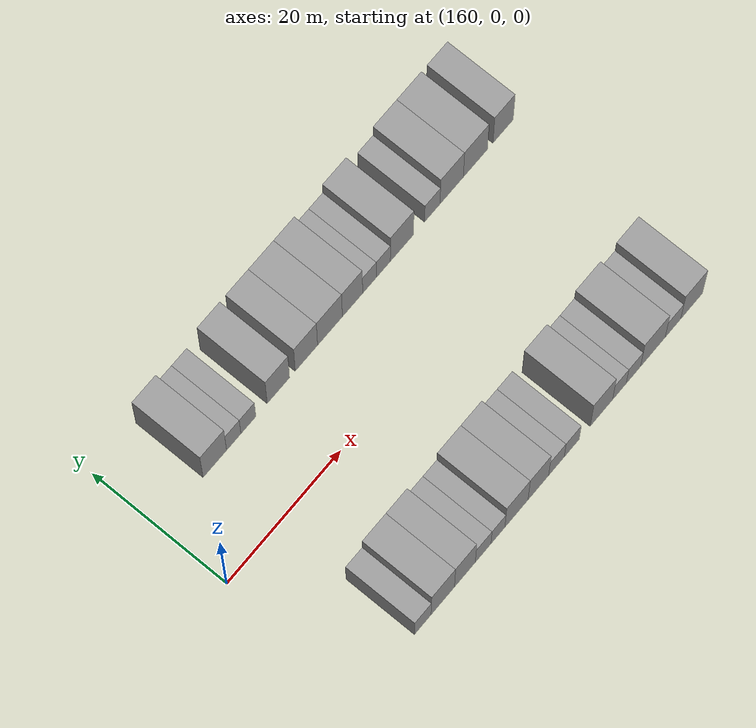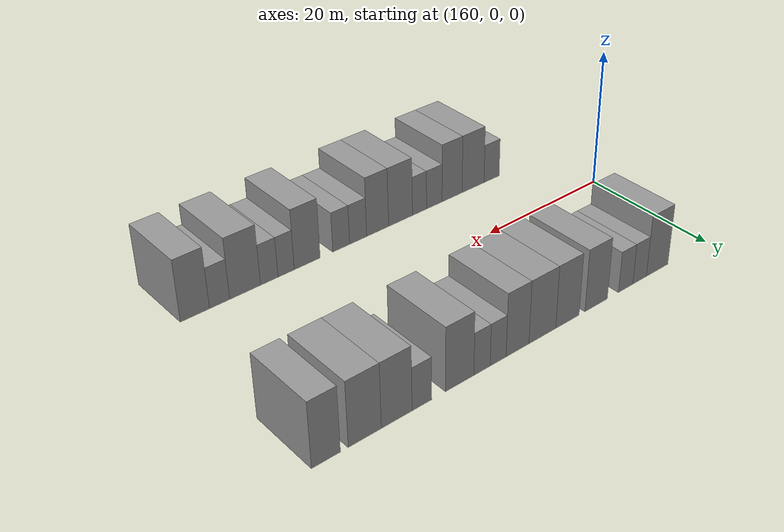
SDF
<sdf version="1.6">
 <world name="default">
  <model name="building_44">
   <static>1</static>
   <pose>169.7165 15.0000 0 0.000000 0.000000 1.570796</pose>
   <link name="link">
    <pose>0 0 4.50 0 0 0</pose>
    <collision name="collision"><geometry><box><size>10.0000 4.1293 9.0000</size></box></geometry></collision>
    <visual name="visual">
     <cast_shadows>0</cast_shadows>
     <geometry><box><size>10.0000 4.1293 9.0000</size></box></geometry>
     <material>
      <script>
       <uri>model://grey_wall/materials/scripts</uri>
       <uri>model://grey_wall/materials/textures</uri>
       <name>vrc/grey_wall</name>
      </script>
     </material>
    </visual>
   </link>
  </model>
  <model name="building_45">
   <static>1</static>
   <pose>173.0395 15.0000 0 0.000000 0.000000 1.570796</pose>
   <link name="link">
    <pose>0 0 3.00 0 0 0</pose>
    <collision name="collision"><geometry><box><size>10.0000 2.5167 6.0000</size></box></geometry></collision>
    <visual name="visual">
     <cast_shadows>0</cast_shadows>
     <geometry><box><size>10.0000 2.5167 6.0000</size></box></geometry>
     <material>
      <script>
       <uri>model://grey_wall/materials/scripts</uri>
       <uri>model://grey_wall/materials/textures</uri>
       <name>vrc/grey_wall</name>
      </script>
     </material>
    </visual>
   </link>
  </model>
  <model name="building_46">
   <static>1</static>
   <pose>175.6132 15.0000 0 0.000000 0.000000 1.570796</pose>
   <link name="link">
    <pose>0 0 3.00 0 0 0</pose>
    <collision name="collision"><geometry><box><size>10.0000 2.6307 6.0000</size></box></geometry></collision>
    <visual name="visual">
     <cast_shadows>0</cast_shadows>
     <geometry><box><size>10.0000 2.6307 6.0000</size></box></geometry>
     <material>
      <script>
       <uri>model://grey_wall/materials/scripts</uri>
       <uri>model://grey_wall/materials/textures</uri>
       <name>vrc/grey_wall</name>
      </script>
     </material>
    </visual>
   </link>
  </model>
  <model name="building_47">
   <static>1</static>
   <pose>180.9091 15.0000 0 0.000000 0.000000 1.570796</pose>
   <link name="link">
    <pose>0 0 4.50 0 0 0</pose>
    <collision name="collision"><geometry><box><size>10.0000 3.9610 9.0000</size></box></geometry></collision>
    <visual name="visual">
     <cast_shadows>0</cast_shadows>
     <geometry><box><size>10.0000 3.9610 9.0000</size></box></geometry>
     <material>
      <script>
       <uri>model://grey_wall/materials/scripts</uri>
       <uri>model://grey_wall/materials/textures</uri>
       <name>vrc/grey_wall</name>
      </script>
     </material>
    </visual>
   </link>
  </model>
  <model name="building_48">
   <static>1</static>
   <pose>185.8766 15.0000 0 0.000000 0.000000 1.570796</pose>
   <link name="link">
    <pose>0 0 4.50 0 0 0</pose>
    <collision name="collision"><geometry><box><size>10.0000 3.9740 9.0000</size></box></geometry></collision>
    <visual name="visual">
     <cast_shadows>0</cast_shadows>
     <geometry><box><size>10.0000 3.9740 9.0000</size></box></geometry>
     <material>
      <script>
       <uri>model://grey_wall/materials/scripts</uri>
       <uri>model://grey_wall/materials/textures</uri>
       <name>vrc/grey_wall</name>
      </script>
     </material>
    </visual>
   </link>
  </model>
  <model name="building_49">
   <static>1</static>
   <pose>190.0757 15.0000 0 0.000000 0.000000 1.570796</pose>
   <link name="link">
    <pose>0 0 4.50 0 0 0</pose>
    <collision name="collision"><geometry><box><size>10.0000 4.4241 9.0000</size></box></geometry></collision>
    <visual name="visual">
     <cast_shadows>0</cast_shadows>
     <geometry><box><size>10.0000 4.4241 9.0000</size></box></geometry>
     <material>
      <script>
       <uri>model://grey_wall/materials/scripts</uri>
       <uri>model://grey_wall/materials/textures</uri>
       <name>vrc/grey_wall</name>
      </script>
     </material>
    </visual>
   </link>
  </model>
  <model name="building_50">
   <static>1</static>
   <pose>194.1069 15.0000 0 0.000000 0.000000 1.570796</pose>
   <link name="link">
    <pose>0 0 4.50 0 0 0</pose>
    <collision name="collision"><geometry><box><size>10.0000 3.6383 9.0000</size></box></geometry></collision>
    <visual name="visual">
     <cast_shadows>0</cast_shadows>
     <geometry><box><size>10.0000 3.6383 9.0000</size></box></geometry>
     <material>
      <script>
       <uri>model://grey_wall/materials/scripts</uri>
       <uri>model://grey_wall/materials/textures</uri>
       <name>vrc/grey_wall</name>
      </script>
     </material>
    </visual>
   </link>
  </model>
  <model name="building_51">
   <static>1</static>
   <pose>197.1654 15.0000 0 0.000000 0.000000 1.570796</pose>
   <link name="link">
    <pose>0 0 3.00 0 0 0</pose>
    <collision name="collision"><geometry><box><size>10.0000 2.4788 6.0000</size></box></geometry></collision>
    <visual name="visual">
     <cast_shadows>0</cast_shadows>
     <geometry><box><size>10.0000 2.4788 6.0000</size></box></geometry>
     <material>
      <script>
       <uri>model://grey_wall/materials/scripts</uri>
       <uri>model://grey_wall/materials/textures</uri>
       <name>vrc/grey_wall</name>
      </script>
     </material>
    </visual>
   </link>
  </model>
  <model name="building_52">
   <static>1</static>
   <pose>199.6519 15.0000 0 0.000000 0.000000 1.570796</pose>
   <link name="link">
    <pose>0 0 3.00 0 0 0</pose>
    <collision name="collision"><geometry><box><size>10.0000 2.4940 6.0000</size></box></geometry></collision>
    <visual name="visual">
     <cast_shadows>0</cast_shadows>
     <geometry><box><size>10.0000 2.4940 6.0000</size></box></geometry>
     <material>
      <script>
       <uri>model://grey_wall/materials/scripts</uri>
       <uri>model://grey_wall/materials/textures</uri>
       <name>vrc/grey_wall</name>
      </script>
     </material>
    </visual>
   </link>
  </model>
  <model name="building_53">
   <static>1</static>
   <pose>202.9938 15.0000 0 0.000000 0.000000 1.570796</pose>
   <link name="link">
    <pose>0 0 4.50 0 0 0</pose>
    <collision name="collision"><geometry><box><size>10.0000 4.1898 9.0000</size></box></geometry></collision>
    <visual name="visual">
     <cast_shadows>0</cast_shadows>
     <geometry><box><size>10.0000 4.1898 9.0000</size></box></geometry>
     <material>
      <script>
       <uri>model://grey_wall/materials/scripts</uri>
       <uri>model://grey_wall/materials/textures</uri>
       <name>vrc/grey_wall</name>
      </script>
     </material>
    </visual>
   </link>
  </model>
  <model name="building_54">
   <static>1</static>
   <pose>208.4833 15.0000 0 0.000000 0.000000 1.570796</pose>
   <link name="link">
    <pose>0 0 3.00 0 0 0</pose>
    <collision name="collision"><geometry><box><size>10.0000 2.7892 6.0000</size></box></geometry></collision>
    <visual name="visual">
     <cast_shadows>0</cast_shadows>
     <geometry><box><size>10.0000 2.7892 6.0000</size></box></geometry>
     <material>
      <script>
       <uri>model://grey_wall/materials/scripts</uri>
       <uri>model://grey_wall/materials/textures</uri>
       <name>vrc/grey_wall</name>
      </script>
     </material>
    </visual>
   </link>
  </model>
  <model name="building_55">
   <static>1</static>
   <pose>212.0010 15.0000 0 0.000000 0.000000 1.570796</pose>
   <link name="link">
    <pose>0 0 4.50 0 0 0</pose>
    <collision name="collision"><geometry><box><size>10.0000 4.2462 9.0000</size></box></geometry></collision>
    <visual name="visual">
     <cast_shadows>0</cast_shadows>
     <geometry><box><size>10.0000 4.2462 9.0000</size></box></geometry>
     <material>
      <script>
       <uri>model://grey_wall/materials/scripts</uri>
       <uri>model://grey_wall/materials/textures</uri>
       <name>vrc/grey_wall</name>
      </script>
     </material>
    </visual>
   </link>
  </model>
  <model name="building_56">
   <static>1</static>
   <pose>216.3289 15.0000 0 0.000000 0.000000 1.570796</pose>
   <link name="link">
    <pose>0 0 4.50 0 0 0</pose>
    <collision name="collision"><geometry><box><size>10.0000 4.4097 9.0000</size></box></geometry></collision>
    <visual name="visual">
     <cast_shadows>0</cast_shadows>
     <geometry><box><size>10.0000 4.4097 9.0000</size></box></geometry>
     <material>
      <script>
       <uri>model://grey_wall/materials/scripts</uri>
       <uri>model://grey_wall/materials/textures</uri>
       <name>vrc/grey_wall</name>
      </script>
     </material>
    </visual>
   </link>
  </model>
  <model name="building_57">
   <static>1</static>
   <pose>221.3847 15.0000 0 0.000000 0.000000 1.570796</pose>
   <link name="link">
    <pose>0 0 4.50 0 0 0</pose>
    <collision name="collision"><geometry><box><size>10.0000 3.7019 9.0000</size></box></geometry></collision>
    <visual name="visual">
     <cast_shadows>0</cast_shadows>
     <geometry><box><size>10.0000 3.7019 9.0000</size></box></geometry>
     <material>
      <script>
       <uri>model://grey_wall/materials/scripts</uri>
       <uri>model://grey_wall/materials/textures</uri>
       <name>vrc/grey_wall</name>
      </script>
     </material>
    </visual>
   </link>
  </model>
  <model name="building_99">
   <static>1</static>
   <pose>170.3978 -15.0000 0 0.000000 0.000000 1.570796</pose>
   <link name="link">
    <pose>0 0 3.00 0 0 0</pose>
    <collision name="collision"><geometry><box><size>10.0000 2.9109 6.0000</size></box></geometry></collision>
    <visual name="visual">
     <cast_shadows>0</cast_shadows>
     <geometry><box><size>10.0000 2.9109 6.0000</size></box></geometry>
     <material>
      <script>
       <uri>model://grey_wall/materials/scripts</uri>
       <uri>model://grey_wall/materials/textures</uri>
       <name>vrc/grey_wall</name>
      </script>
     </material>
    </visual>
   </link>
  </model>
  <model name="building_100">
   <static>1</static>
   <pose>173.9233 -15.0000 0 0.000000 0.000000 1.570796</pose>
   <link name="link">
    <pose>0 0 4.50 0 0 0</pose>
    <collision name="collision"><geometry><box><size>10.0000 4.1402 9.0000</size></box></geometry></collision>
    <visual name="visual">
     <cast_shadows>0</cast_shadows>
     <geometry><box><size>10.0000 4.1402 9.0000</size></box></geometry>
     <material>
      <script>
       <uri>model://grey_wall/materials/scripts</uri>
       <uri>model://grey_wall/materials/textures</uri>
       <name>vrc/grey_wall</name>
      </script>
     </material>
    </visual>
   </link>
  </model>
  <model name="building_101">
   <static>1</static>
   <pose>177.8419 -15.0000 0 0.000000 0.000000 1.570796</pose>
   <link name="link">
    <pose>0 0 4.50 0 0 0</pose>
    <collision name="collision"><geometry><box><size>10.0000 3.6970 9.0000</size></box></geometry></collision>
    <visual name="visual">
     <cast_shadows>0</cast_shadows>
     <geometry><box><size>10.0000 3.6970 9.0000</size></box></geometry>
     <material>
      <script>
       <uri>model://grey_wall/materials/scripts</uri>
       <uri>model://grey_wall/materials/textures</uri>
       <name>vrc/grey_wall</name>
      </script>
     </material>
    </visual>
   </link>
  </model>
  <model name="building_102">
   <static>1</static>
   <pose>181.0839 -15.0000 0 0.000000 0.000000 1.570796</pose>
   <link name="link">
    <pose>0 0 3.00 0 0 0</pose>
    <collision name="collision"><geometry><box><size>10.0000 2.7870 6.0000</size></box></geometry></collision>
    <visual name="visual">
     <cast_shadows>0</cast_shadows>
     <geometry><box><size>10.0000 2.7870 6.0000</size></box></geometry>
     <material>
      <script>
       <uri>model://grey_wall/materials/scripts</uri>
       <uri>model://grey_wall/materials/textures</uri>
       <name>vrc/grey_wall</name>
      </script>
     </material>
    </visual>
   </link>
  </model>
  <model name="building_103">
   <static>1</static>
   <pose>183.7151 -15.0000 0 0.000000 0.000000 1.570796</pose>
   <link name="link">
    <pose>0 0 3.00 0 0 0</pose>
    <collision name="collision"><geometry><box><size>10.0000 2.4754 6.0000</size></box></geometry></collision>
    <visual name="visual">
     <cast_shadows>0</cast_shadows>
     <geometry><box><size>10.0000 2.4754 6.0000</size></box></geometry>
     <material>
      <script>
       <uri>model://grey_wall/materials/scripts</uri>
       <uri>model://grey_wall/materials/textures</uri>
       <name>vrc/grey_wall</name>
      </script>
     </material>
    </visual>
   </link>
  </model>
  <model name="building_104">
   <static>1</static>
   <pose>187.0239 -15.0000 0 0.000000 0.000000 1.570796</pose>
   <link name="link">
    <pose>0 0 4.50 0 0 0</pose>
    <collision name="collision"><geometry><box><size>10.0000 4.1422 9.0000</size></box></geometry></collision>
    <visual name="visual">
     <cast_shadows>0</cast_shadows>
     <geometry><box><size>10.0000 4.1422 9.0000</size></box></geometry>
     <material>
      <script>
       <uri>model://grey_wall/materials/scripts</uri>
       <uri>model://grey_wall/materials/textures</uri>
       <name>vrc/grey_wall</name>
      </script>
     </material>
    </visual>
   </link>
  </model>
  <model name="building_105">
   <static>1</static>
   <pose>190.9406 -15.0000 0 0.000000 0.000000 1.570796</pose>
   <link name="link">
    <pose>0 0 4.50 0 0 0</pose>
    <collision name="collision"><geometry><box><size>10.0000 3.6913 9.0000</size></box></geometry></collision>
    <visual name="visual">
     <cast_shadows>0</cast_shadows>
     <geometry><box><size>10.0000 3.6913 9.0000</size></box></geometry>
     <material>
      <script>
       <uri>model://grey_wall/materials/scripts</uri>
       <uri>model://grey_wall/materials/textures</uri>
       <name>vrc/grey_wall</name>
      </script>
     </material>
    </visual>
   </link>
  </model>
  <model name="building_106">
   <static>1</static>
   <pose>194.1928 -15.0000 0 0.000000 0.000000 1.570796</pose>
   <link name="link">
    <pose>0 0 3.00 0 0 0</pose>
    <collision name="collision"><geometry><box><size>10.0000 2.8129 6.0000</size></box></geometry></collision>
    <visual name="visual">
     <cast_shadows>0</cast_shadows>
     <geometry><box><size>10.0000 2.8129 6.0000</size></box></geometry>
     <material>
      <script>
       <uri>model://grey_wall/materials/scripts</uri>
       <uri>model://grey_wall/materials/textures</uri>
       <name>vrc/grey_wall</name>
      </script>
     </material>
    </visual>
   </link>
  </model>
  <model name="building_107">
   <static>1</static>
   <pose>196.9590 -15.0000 0 0.000000 0.000000 1.570796</pose>
   <link name="link">
    <pose>0 0 3.00 0 0 0</pose>
    <collision name="collision"><geometry><box><size>10.0000 2.7196 6.0000</size></box></geometry></collision>
    <visual name="visual">
     <cast_shadows>0</cast_shadows>
     <geometry><box><size>10.0000 2.7196 6.0000</size></box></geometry>
     <material>
      <script>
       <uri>model://grey_wall/materials/scripts</uri>
       <uri>model://grey_wall/materials/textures</uri>
       <name>vrc/grey_wall</name>
      </script>
     </material>
    </visual>
   </link>
  </model>
  <model name="building_108">
   <static>1</static>
   <pose>202.3341 -15.0000 0 0.000000 0.000000 1.570796</pose>
   <link name="link">
    <pose>0 0 4.50 0 0 0</pose>
    <collision name="collision"><geometry><box><size>10.0000 4.0306 9.0000</size></box></geometry></collision>
    <visual name="visual">
     <cast_shadows>0</cast_shadows>
     <geometry><box><size>10.0000 4.0306 9.0000</size></box></geometry>
     <material>
      <script>
       <uri>model://grey_wall/materials/scripts</uri>
       <uri>model://grey_wall/materials/textures</uri>
       <name>vrc/grey_wall</name>
      </script>
     </material>
    </visual>
   </link>
  </model>
  <model name="building_109">
   <static>1</static>
   <pose>205.5930 -15.0000 0 0.000000 0.000000 1.570796</pose>
   <link name="link">
    <pose>0 0 3.00 0 0 0</pose>
    <collision name="collision"><geometry><box><size>10.0000 2.4871 6.0000</size></box></geometry></collision>
    <visual name="visual">
     <cast_shadows>0</cast_shadows>
     <geometry><box><size>10.0000 2.4871 6.0000</size></box></geometry>
     <material>
      <script>
       <uri>model://grey_wall/materials/scripts</uri>
       <uri>model://grey_wall/materials/textures</uri>
       <name>vrc/grey_wall</name>
      </script>
     </material>
    </visual>
   </link>
  </model>
  <model name="building_110">
   <static>1</static>
   <pose>208.1387 -15.0000 0 0.000000 0.000000 1.570796</pose>
   <link name="link">
    <pose>0 0 3.00 0 0 0</pose>
    <collision name="collision"><geometry><box><size>10.0000 2.6045 6.0000</size></box></geometry></collision>
    <visual name="visual">
     <cast_shadows>0</cast_shadows>
     <geometry><box><size>10.0000 2.6045 6.0000</size></box></geometry>
     <material>
      <script>
       <uri>model://grey_wall/materials/scripts</uri>
       <uri>model://grey_wall/materials/textures</uri>
       <name>vrc/grey_wall</name>
      </script>
     </material>
    </visual>
   </link>
  </model>
  <model name="building_111">
   <static>1</static>
   <pose>211.6876 -15.0000 0 0.000000 0.000000 1.570796</pose>
   <link name="link">
    <pose>0 0 4.50 0 0 0</pose>
    <collision name="collision"><geometry><box><size>10.0000 4.4932 9.0000</size></box></geometry></collision>
    <visual name="visual">
     <cast_shadows>0</cast_shadows>
     <geometry><box><size>10.0000 4.4932 9.0000</size></box></geometry>
     <material>
      <script>
       <uri>model://grey_wall/materials/scripts</uri>
       <uri>model://grey_wall/materials/textures</uri>
       <name>vrc/grey_wall</name>
      </script>
     </material>
    </visual>
   </link>
  </model>
  <model name="building_112">
   <static>1</static>
   <pose>215.3622 -15.0000 0 0.000000 0.000000 1.570796</pose>
   <link name="link">
    <pose>0 0 3.00 0 0 0</pose>
    <collision name="collision"><geometry><box><size>10.0000 2.8561 6.0000</size></box></geometry></collision>
    <visual name="visual">
     <cast_shadows>0</cast_shadows>
     <geometry><box><size>10.0000 2.8561 6.0000</size></box></geometry>
     <material>
      <script>
       <uri>model://grey_wall/materials/scripts</uri>
       <uri>model://grey_wall/materials/textures</uri>
       <name>vrc/grey_wall</name>
      </script>
     </material>
    </visual>
   </link>
  </model>
  <model name="building_113">
   <static>1</static>
   <pose>218.8065 -15.0000 0 0.000000 0.000000 1.570796</pose>
   <link name="link">
    <pose>0 0 4.50 0 0 0</pose>
    <collision name="collision"><geometry><box><size>10.0000 4.0326 9.0000</size></box></geometry></collision>
    <visual name="visual">
     <cast_shadows>0</cast_shadows>
     <geometry><box><size>10.0000 4.0326 9.0000</size></box></geometry>
     <material>
      <script>
       <uri>model://grey_wall/materials/scripts</uri>
       <uri>model://grey_wall/materials/textures</uri>
       <name>vrc/grey_wall</name>
      </script>
     </material>
    </visual>
   </link>
  </model>
 </world>
</sdf>
